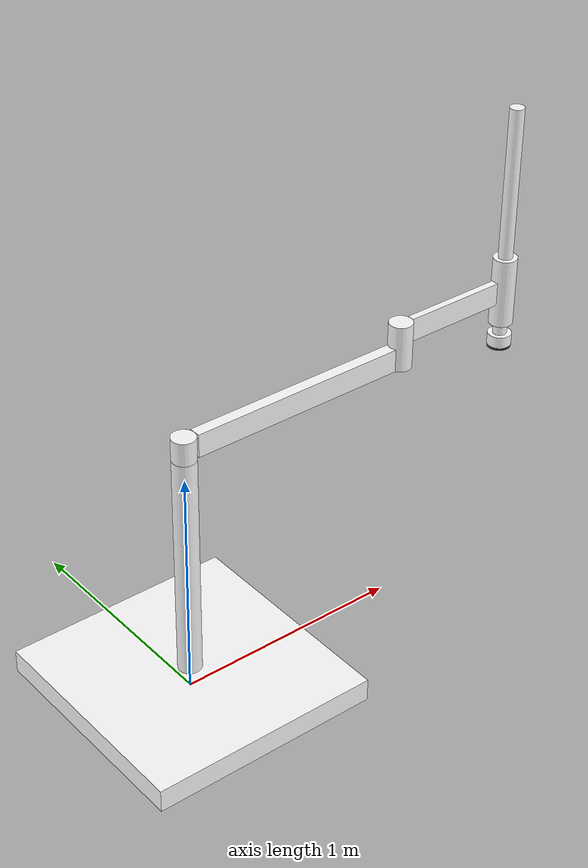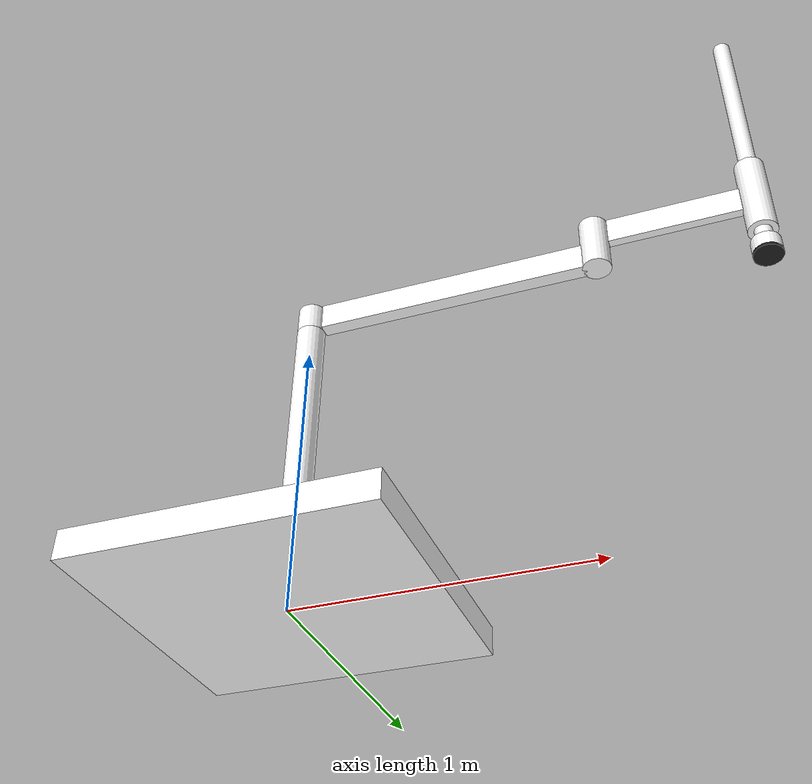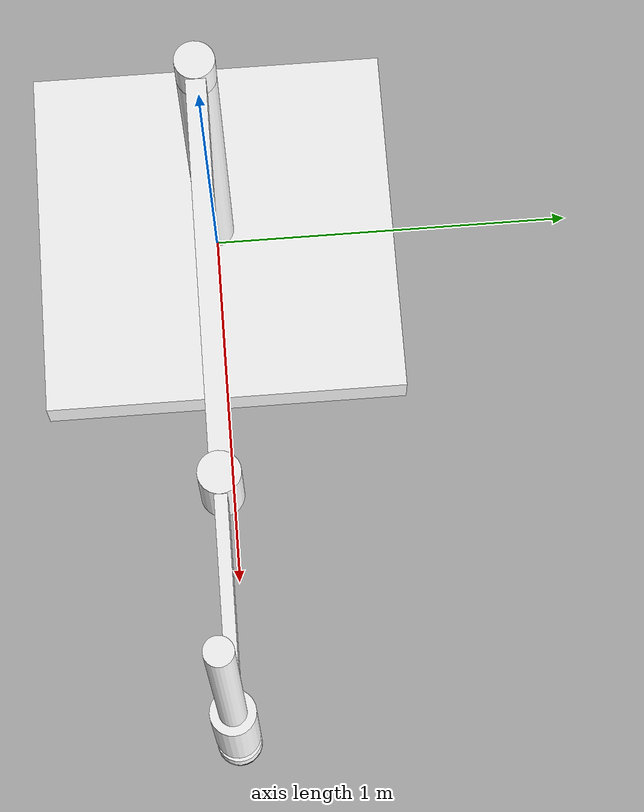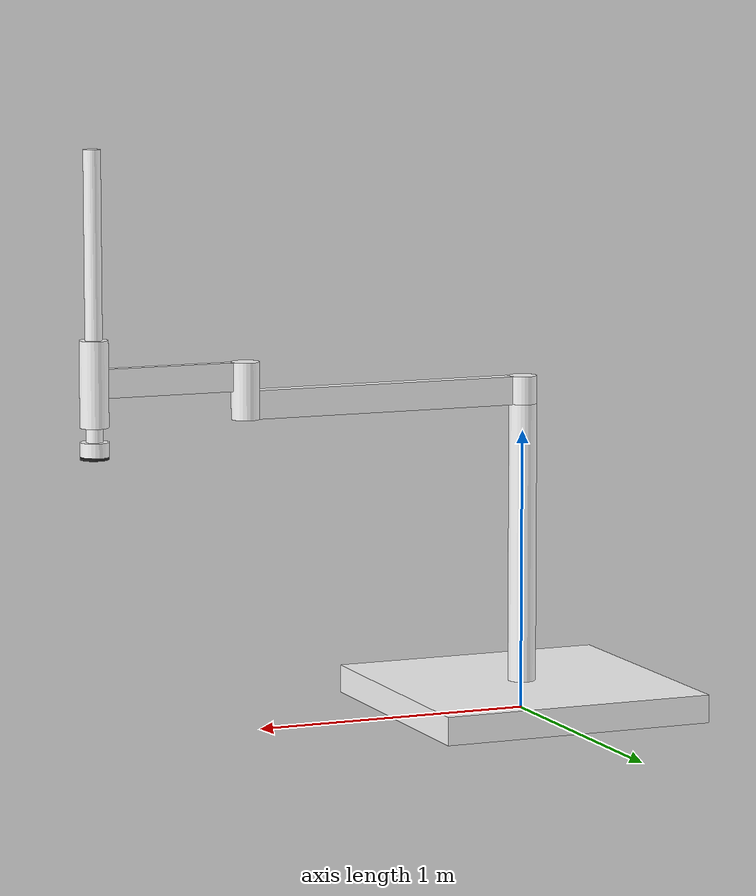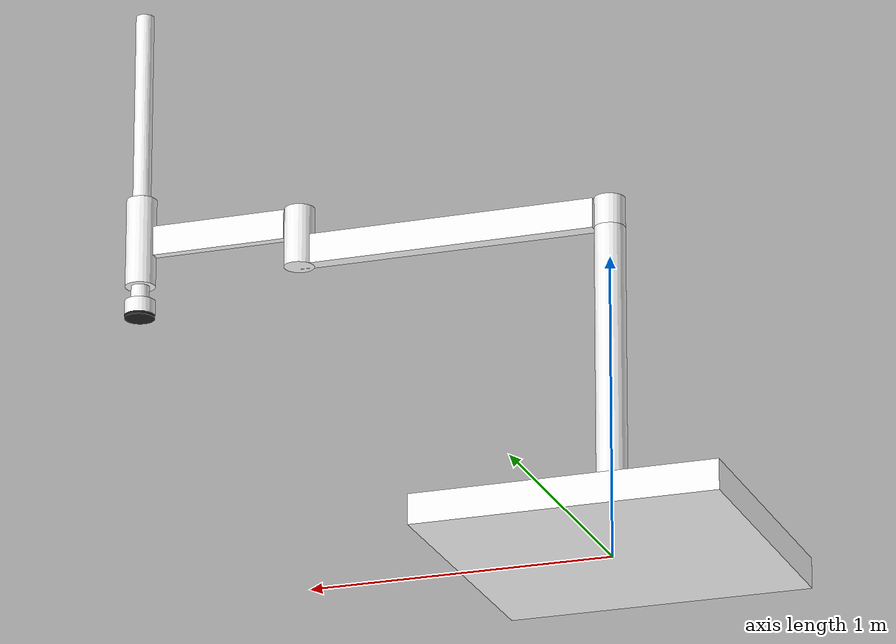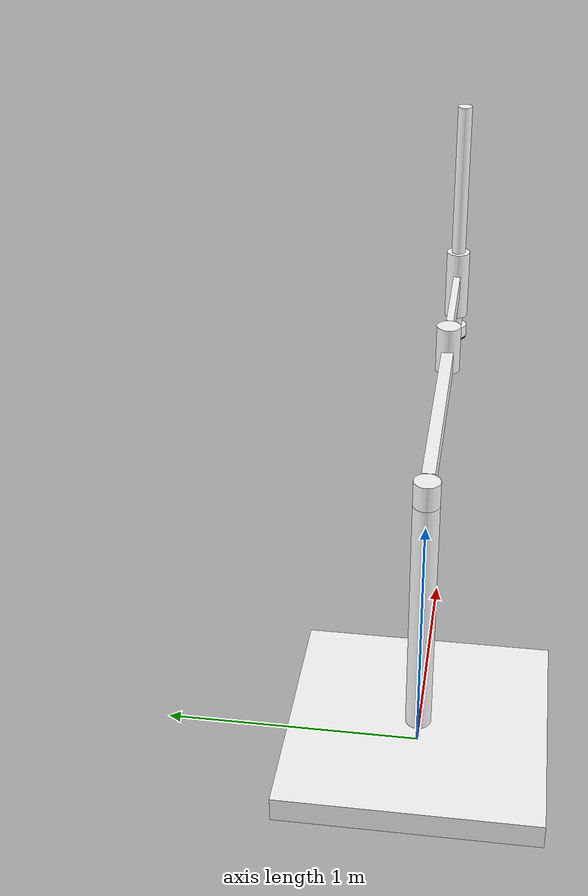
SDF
<?xml version="1.0" ?>
<sdf version="1.5">
  <model name="simple_arm_vacuum_gripper">

      <!-- The arm -->
      <include>
        <uri>model://simple_arm</uri>
      </include>

      <!-- The vacuum gripper -->
      <model name="vacuum_gripper">
        <include>
          <uri>model://vacuum_gripper</uri>
          <pose>1.6 0 0.99 0 0 0</pose>
        </include>

        <!-- Load the plugin to control the vacuum gripper-->
        <plugin name="ros_vacuum_gripper" filename='libROSVacuumGripperPlugin.so'>
          <grasp_check>
            <detach_steps>40</detach_steps>
            <attach_steps>2</attach_steps>
            <min_contact_count>1</min_contact_count>
          </grasp_check>
          <suction_cup_link>
            simple_arm_vacuum_gripper::vacuum_gripper::vacuum_gripper::suction_cup
          </suction_cup_link>

          <!-- The gripper will drop the following objects -->
          <drops>
            <drop_region>
              <min>-10 -10 0</min>
              <max>10 10 2.5</max>
            </drop_region>

            <object>
              <type>beer</type>
              <destination>0 0 0.2 0 0 0</destination>
            </object>
          </drops>

          <!-- ROS -->
          <robot_namespace>ariac</robot_namespace>
          <control_topic>gripper/control</control_topic>
          <state_topic>gripper/state</state_topic>
        </plugin>
      </model>

      <!-- Attach the gripper to the arm -->
      <joint name="arm_gripper_joint" type="revolute">
        <parent>simple_arm::arm_wrist_roll</parent>
        <child>vacuum_gripper::suction_cup</child>
        <axis>
          <limit>
            <lower>0</lower>
            <upper>0</upper>
          </limit>
          <xyz>0 0 1</xyz>
          <use_parent_model_frame>true</use_parent_model_frame>
        </axis>
      </joint>

    </model>
</sdf>

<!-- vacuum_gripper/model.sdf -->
<sdf version="1.5">
  <model name="vacuum_gripper">
    <!-- The suction cup of a vacuum gripper -->
    <link name="suction_cup">
      <pose>0 0 0.005 0 0 0</pose>
      <inertial>
        <pose>0 0 0 0 0 0</pose>
        <inertia>
          <ixx>0.0000063</ixx>
          <ixy>0</ixy>
          <ixz>0</ixz>
          <iyy>0.0000063</iyy>
          <iyz>0</iyz>
          <izz>0.000025</izz>
        </inertia>
        <mass>0.01</mass>
      </inertial>

      <collision name="collision_base_gripper">
        <geometry>
          <cylinder>
            <radius>0.05</radius>
            <length>0.01</length>
          </cylinder>
        </geometry>
      </collision>

      <visual name="visual_base_gripper">
        <geometry>
          <cylinder>
            <radius>0.05</radius>
            <length>0.01</length>
          </cylinder>
        </geometry>
        <material>
          <script>
            <uri>file://media/materials/scripts/gazebo.material</uri>
            <name>Gazebo/Black</name>
          </script>
        </material>
      </visual>
    </link>
  </model>
</sdf>

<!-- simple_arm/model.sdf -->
<sdf version="1.5">
  <model name="simple_arm">
    <link name="arm_base">
      <inertial>
        <pose>0 0 0.00099 0 0 0</pose>
        <inertia>
          <ixx>1.11</ixx>
          <ixy>0</ixy>
          <ixz>0</ixz>
          <iyy>100.11</iyy>
          <iyz>0</iyz>
          <izz>1.01</izz>
        </inertia>
        <mass>101.0</mass>
      </inertial>
      <collision name="arm_base_geom">
        <pose>0 0 0.05 0 0 0</pose>
        <geometry>
          <box>
            <size>1.0 1.0 0.1</size>
          </box>
        </geometry>
      </collision>
      <visual name="arm_base_geom_visual">
        <pose>0 0 0.05 0 0 0</pose>
        <geometry>
          <box>
            <size>1.0 1.0 0.1</size>
          </box>
        </geometry>
        <material><diffuse>1 1 1 1</diffuse><specular>0.1 0.1 0.1 1</specular></material>
      </visual>
      <collision name="arm_base_geom_arm_trunk">
        <pose>0 0 0.6 0 0 0</pose>
        <geometry>
          <cylinder>
            <radius>0.05</radius>
            <length>1.0</length>
          </cylinder>
        </geometry>
      </collision>
      <visual name="arm_base_geom_arm_trunk_visual">
        <pose>0 0 0.6 0 0 0</pose>
        <geometry>
          <cylinder>
            <radius>0.05</radius>
            <length>1.0</length>
          </cylinder>
        </geometry>
        <material><diffuse>1 1 1 1</diffuse><specular>0.1 0.1 0.1 1</specular></material>
      </visual>
    </link>
    <link name="arm_shoulder_pan">
      <pose>0 0 1.1 0 0 0</pose>
      <inertial>
        <pose>0.045455 0 0 0 0 0</pose>
        <inertia>
          <ixx>0.011</ixx>
          <ixy>0</ixy>
          <ixz>0</ixz>
          <iyy>0.0225</iyy>
          <iyz>0</iyz>
          <izz>0.0135</izz>
        </inertia>
        <mass>1.1</mass>
      </inertial>
      <collision name="arm_shoulder_pan_geom">
        <pose>0 0 0.05 0 0 0</pose>
        <geometry>
          <cylinder>
            <radius>0.05</radius>
            <length>0.1</length>
          </cylinder>
        </geometry>
      </collision>
      <visual name="arm_shoulder_pan_geom_visual">
        <pose>0 0 0.05 0 0 0</pose>
        <geometry>
          <cylinder>
            <radius>0.05</radius>
            <length>0.1</length>
          </cylinder>
        </geometry>
        <material><diffuse>1 1 1 1</diffuse><specular>0.1 0.1 0.1 1</specular></material>
      </visual>
      <collision name="arm_shoulder_pan_geom_arm_shoulder">
        <pose>0.55 0 0.05 0 0 0</pose>
        <geometry>
          <box>
            <size>1.0 0.05 0.1</size>
          </box>
        </geometry>
      </collision>
      <visual name="arm_shoulder_pan_geom_arm_shoulder_visual">
        <pose>0.55 0 0.05 0 0 0</pose>
        <geometry>
          <box>
            <size>1.0 0.05 0.1</size>
          </box>
        </geometry>
        <material><diffuse>1 1 1 1</diffuse><specular>0.1 0.1 0.1 1</specular></material>
      </visual>
    </link>
    <link name="arm_elbow_pan">
      <pose>1.05 0 1.1 0 0 0</pose>
      <inertial>
        <pose>0.0875 0 0.083333 0 0 0</pose>
        <inertia>
          <ixx>0.031</ixx>
          <ixy>0</ixy>
          <ixz>0.005</ixz>
          <iyy>0.07275</iyy>
          <iyz>0</iyz>
          <izz>0.04475</izz>
        </inertia>
        <mass>1.2</mass>
      </inertial>
      <collision name="arm_elbow_pan_geom">
        <pose>0 0 0.1 0 0 0</pose>
        <geometry>
          <cylinder>
            <radius>0.05</radius>
            <length>0.2</length>
          </cylinder>
        </geometry>
      </collision>
      <visual name="arm_elbow_pan_geom_visual">
        <pose>0 0 0.1 0 0 0</pose>
        <geometry>
          <cylinder>
            <radius>0.05</radius>
            <length>0.2</length>
          </cylinder>
        </geometry>
        <material><diffuse>1 1 1 1</diffuse><specular>0.1 0.1 0.1 1</specular></material>
      </visual>
      <collision name="arm_elbow_pan_geom_arm_elbow">
        <pose>0.3 0 0.15 0 0 0</pose>
        <geometry>
          <box>
            <size>0.5 0.03 0.1</size>
          </box>
        </geometry>
      </collision>
      <visual name="arm_elbow_pan_geom_arm_elbow_visual">
        <pose>0.3 0 0.15 0 0 0</pose>
        <geometry>
          <box>
            <size>0.5 0.03 0.1</size>
          </box>
        </geometry>
        <material><diffuse>1 1 1 1</diffuse><specular>0.1 0.1 0.1 1</specular></material>
      </visual>
      <collision name="arm_elbow_pan_geom_arm_wrist">
        <pose>0.55 0 0.15 0 0 0</pose>
        <geometry>
          <cylinder>
            <radius>0.05</radius>
            <length>0.3</length>
          </cylinder>
        </geometry>
      </collision>
      <visual name="arm_elbow_pan_geom_arm_wrist_visual">
        <pose>0.55 0 0.15 0 0 0</pose>
        <geometry>
          <cylinder>
            <radius>0.05</radius>
            <length>0.3</length>
          </cylinder>
        </geometry>
        <material><diffuse>1 1 1 1</diffuse><specular>0.1 0.1 0.1 1</specular></material>
      </visual>
    </link>
    <link name="arm_wrist_lift">
      <pose>1.6 0 1.05 0 0 0</pose>
      <inertial>
        <pose>0 0 0 0 0 0</pose>
        <inertia>
          <ixx>0.01</ixx>
          <ixy>0</ixy>
          <ixz>0</ixz>
          <iyy>0.01</iyy>
          <iyz>0</iyz>
          <izz>0.001</izz>
        </inertia>
        <mass>0.1</mass>
      </inertial>
      <collision name="arm_wrist_lift_geom">
        <pose>0 0 0.5 0 0 0</pose>
        <geometry>
          <cylinder>
            <radius>0.03</radius>
            <length>1.0</length>
          </cylinder>
        </geometry>
      </collision>
      <visual name="arm_wrist_lift_geom_visual">
        <pose>0 0 0.5 0 0 0</pose>
        <geometry>
          <cylinder>
            <radius>0.03</radius>
            <length>1.0</length>
          </cylinder>
        </geometry>
        <material><diffuse>1 1 1 1</diffuse><specular>0.1 0.1 0.1 1</specular></material>
      </visual>
    </link>
    <link name="arm_wrist_roll">
      <pose>1.6 0 1.0 0 0 0</pose>
      <inertial>
        <pose>0 0 0 0 0 0</pose>
        <inertia>
          <ixx>0.01</ixx>
          <ixy>0</ixy>
          <ixz>0</ixz>
          <iyy>0.01</iyy>
          <iyz>0</iyz>
          <izz>0.001</izz>
        </inertia>
        <mass>0.1</mass>
      </inertial>
      <collision name="arm_wrist_roll_geom">
        <pose>0 0 0.025 0 0 0</pose>
        <geometry>
          <cylinder>
            <radius>0.05</radius>
            <length>0.05</length>
          </cylinder>
        </geometry>
      </collision>
      <visual name="arm_wrist_roll_geom_visual">
        <pose>0 0 0.025 0 0 0</pose>
        <geometry>
          <cylinder>
            <radius>0.05</radius>
            <length>0.05</length>
          </cylinder>
        </geometry>
        <material><diffuse>1 1 1 1</diffuse><specular>0.1 0.1 0.1 1</specular></material>
      </visual>
    </link>
    <joint name="arm_shoulder_pan_joint" type="revolute">
      <parent>arm_base</parent>
      <child>arm_shoulder_pan</child>
      <axis>
        <dynamics>
          <damping>1.000000</damping>
          <friction>0.000000</friction>
        </dynamics>
        <xyz>0 0 1</xyz>
        <use_parent_model_frame>true</use_parent_model_frame>
      </axis>
    </joint>
    <joint name="arm_elbow_pan_joint" type="revolute">
      <parent>arm_shoulder_pan</parent>
      <child>arm_elbow_pan</child>
      <axis>
        <dynamics>
          <damping>1.000000</damping>
          <friction>0.000000</friction>
        </dynamics>
        <xyz>0 0 1</xyz>
        <use_parent_model_frame>true</use_parent_model_frame>
      </axis>
    </joint>
    <joint name="arm_wrist_lift_joint" type="prismatic">
      <parent>arm_elbow_pan</parent>
      <child>arm_wrist_lift</child>
      <axis>
        <dynamics>
          <damping>1.000000</damping>
          <friction>0.000000</friction>
        </dynamics>
        <limit>
          <lower>-0.8</lower>
          <upper>0.1</upper>
        </limit>
        <xyz>0 0 1</xyz>
        <use_parent_model_frame>true</use_parent_model_frame>
      </axis>
    </joint>
    <joint name="arm_wrist_roll_joint" type="revolute">
      <parent>arm_wrist_lift</parent>
      <child>arm_wrist_roll</child>
      <axis>
        <dynamics>
          <damping>1.000000</damping>
          <friction>0.000000</friction>
        </dynamics>
        <limit>
          <lower>-2.999994</lower>
          <upper>2.999994</upper>
        </limit>
        <xyz>0 0 1</xyz>
        <use_parent_model_frame>true</use_parent_model_frame>
      </axis>
    </joint>
  </model>
</sdf>
